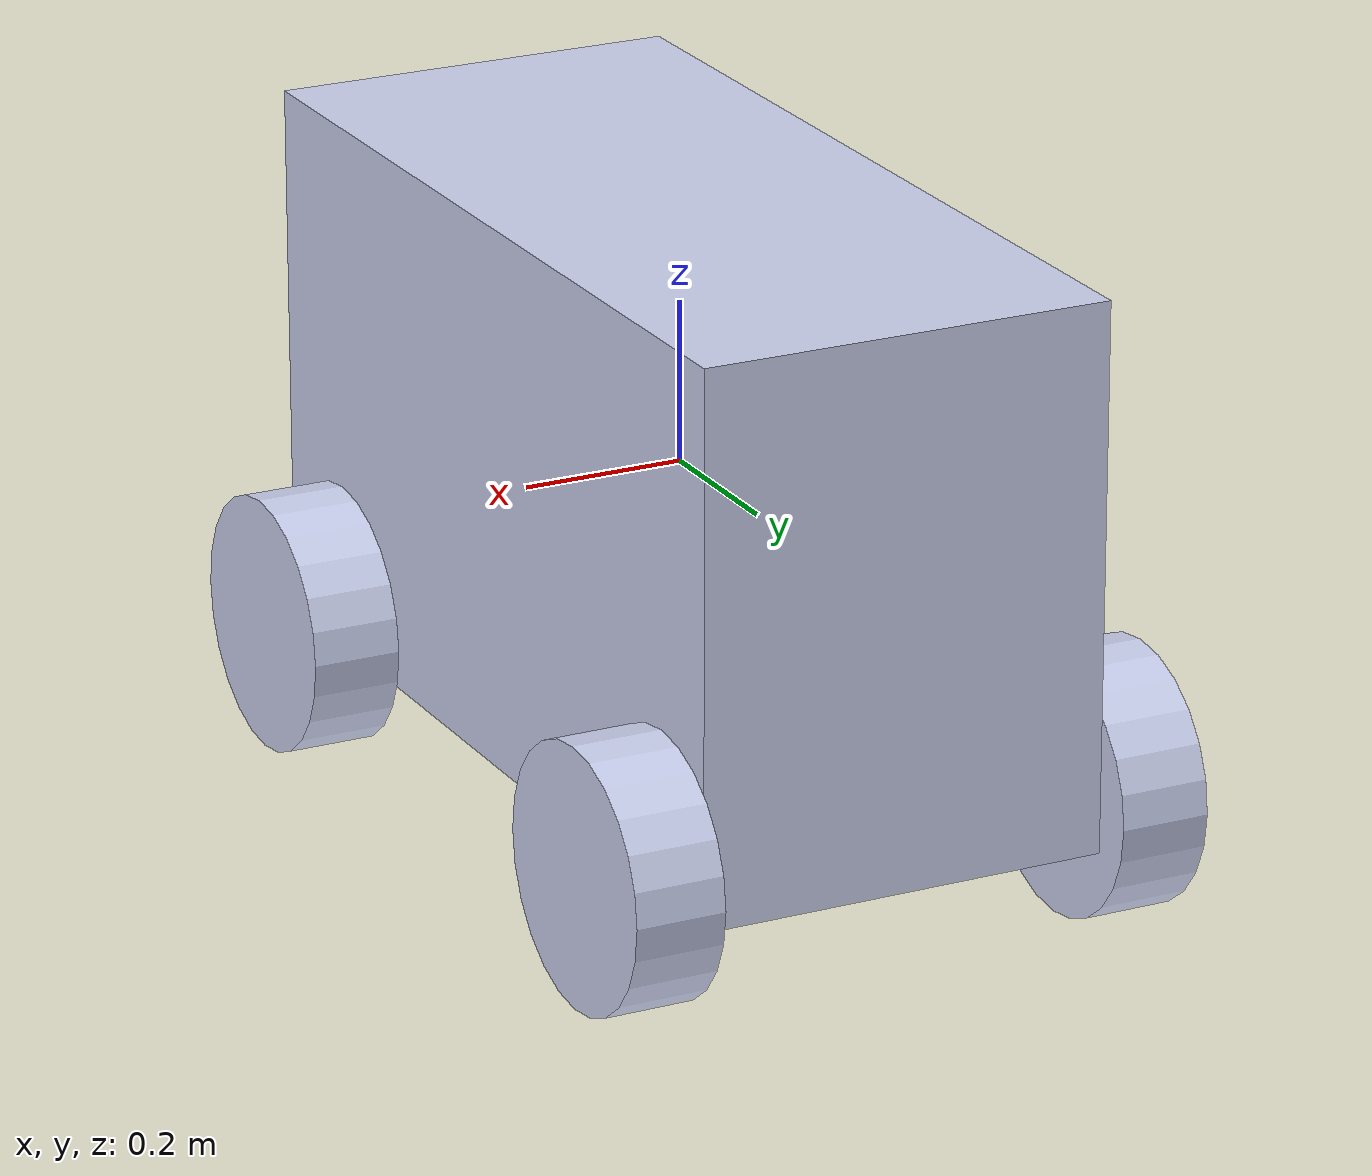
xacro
<?xml version="1.0" encoding="utf-8"?>

<robot name="robot_base" xmlns:xacro="http://www.ros.org/wiki/xacro">

    <xacro:property name="chassisHeight" value="0.66976"/>
    <xacro:property name="chassisLength" value="1.13198"/>
    <xacro:property name="chassisWidth" value="0.5077"/>
    <xacro:property name="chassisMass" value="20"/>
    <xacro:property name="wheelWidth" value="0.11"/>
    <xacro:property name="wheelRadius" value="0.16"/>
    <xacro:property name="wheelMass" value="2"/>

    <!-- Distance between middle - middle front back wheels 0.873175 m -->
    <!-- Distance between middle - middle Left and right wheels 0.62285 m --> <!-- double check, bad mesaurement to middle of wheel -->
    <!-- Distance from back of chassis to middle of back wheels 0.1534125 -->
    <!-- Distance from bottom of chassis to middle of wheels 0.0475 -->

    <xacro:property name="wheelDeltaWidth" value="${(chassisWidth + wheelWidth)/2}" /> <!-- not using messured distance because can calculate it-->
    <xacro:property name="wheelDeltaBack" value="-${chassisLength/2 - 0.1534125}" />
    <xacro:property name="wheelDeltaFront" value="${wheelDeltaBack + 0.873175}" />
    <xacro:property name="wheelDeltaHeight" value="-${chassisHeight/2 - 0.0475}" />

    <xacro:property name="pretty" value="false"/>

    <material name="grey">
        <color
        rgba="0.79216 0.81961 0.93333 1" />
    </material>

    <xacro:include filename="macros.urdf.xacro" />

    <link name="frame_link">
        <inertial>
            <origin xyz="0 0 0" rpy="0 0 0" />
            <xacro:box_inertia m="${chassisMass}" x="${chassisWidth}" y="${chassisLength}" z="${chassisHeight}" />
        </inertial>
        <visual>
        <origin xyz="0 0 0" rpy="0 0 0" />
        <geometry>
            <xacro:if value="${pretty}">
                <mesh
                filename="../meshes/chassis.STL" scale="0.001 0.001 0.001"/> <!-- stl is measured in mm, need m -->
            </xacro:if>
            <xacro:unless value="${pretty}">
                <box size="${chassisWidth} ${chassisLength} ${chassisHeight}"/>
            </xacro:unless>
        </geometry>
        <material name="grey" />
        </visual>
        <collision>
        <origin
            xyz="0 0 0"
            rpy="0 0 0" />
        <geometry>
            <box size="${chassisWidth} ${chassisLength} ${chassisHeight}"/>
        </geometry>
        </collision>
    </link>

    <xacro:wheel_link name="wheelFrontLeft_link" />

    <xacro:wheel_joint wheel="wheelFrontLeft" x="-${wheelDeltaWidth}" y="${wheelDeltaFront}" z="${wheelDeltaHeight}"/>

    <xacro:wheel_link name="wheelFrontRight_link" />

    <xacro:wheel_joint wheel="wheelFrontRight" x="${wheelDeltaWidth}" y="${wheelDeltaFront}" z="${wheelDeltaHeight}"/>

    <xacro:wheel_link name="wheelBackLeft_link" />

    <xacro:wheel_joint wheel="wheelBackLeft" x="-${wheelDeltaWidth}" y="${wheelDeltaBack}" z="${wheelDeltaHeight}"/>

    <xacro:wheel_link name="wheelBackRight_link" />

    <xacro:wheel_joint wheel="wheelBackRight" x="${wheelDeltaWidth}" y="${wheelDeltaBack}" z="${wheelDeltaHeight}"/>

</robot>

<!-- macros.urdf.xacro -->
<robot xmlns:xacro="http://www.ros.org/wiki/xacro">

<xacro:macro name="box_inertia" params="m x y z">
    <mass value="${m}" />
    <inertia  ixx="${m*(y*y+z*z)/12}" ixy = "0" ixz = "0"
        iyy="${m*(x*x+z*z)/12}" iyz = "0"
        izz="${m*(x*x+y*y)/12}"/>
</xacro:macro>
<xacro:macro name="cylinder_inertia" params="m r h">
    <mass value="${m}" />
    <inertia  ixx="${m*(3*r*r+h*h)/12}" ixy = "0" ixz = "0"
        iyy="${m*(3*r*r+h*h)/12}" iyz = "0"
        izz="${m*r*r/2}"/>
</xacro:macro>

<xacro:macro name="wheel_link" params="name pretty:=^|true wheelRadius:=^ wheelWidth:=^ wheelMass:=^">

    <link name="${name}">
        <inertial>
            <origin xyz="0 0 0" rpy="0 0 0" />
            <xacro:cylinder_inertia m="${wheelMass}" r="${wheelRadius}" h="${wheelWidth}" />
        </inertial>

        <visual>
            <origin xyz="0 0 0" rpy="0 0 0" />
            <geometry>
            <xacro:if value="${pretty}">
                <mesh
                filename="../meshes/ASM_Drive_Assembly.STL" scale="0.001 0.001 0.001"/> <!-- stl is measured in mm, need m -->
            </xacro:if>
            <xacro:unless value="${pretty}">
                <cylinder radius="${wheelRadius}" length="${wheelWidth}" />
            </xacro:unless>
            </geometry>
            <material name="grey" />
        </visual>

        <collision>
            <origin xyz="0 0 0" rpy="0 0 0" />
            <geometry>
                <cylinder radius="${wheelRadius}" length="${wheelWidth}" />
            </geometry>
        </collision>
    </link>

    <gazebo reference="${name}">
        <mu1 value="1.0" />
        <mu2 value="0.5" />
    </gazebo>

</xacro:macro>

<xacro:macro name="wheel_joint" params="wheel x y z">
    <joint
        name="${str(wheel) + '_joint'}"
        type="continuous">
        <origin
            xyz="${x} ${y} ${z}"
            rpy="${pi/2} 0 ${pi/2}" />
        <parent link="frame_link" />
        <child link="${str(wheel) + '_link'}" />
        <axis
        xyz="0 0 -1" />
    </joint>
</xacro:macro>

</robot>
